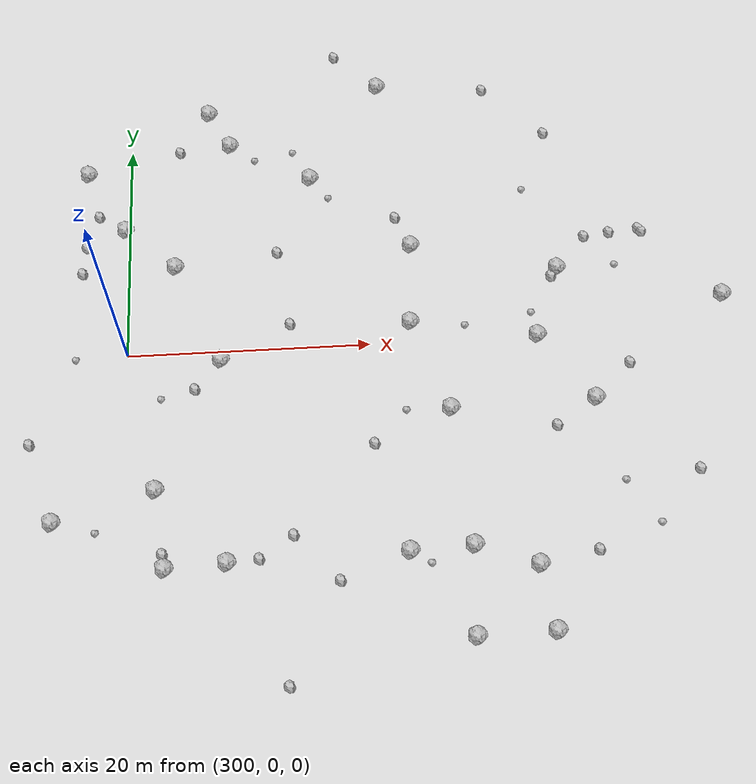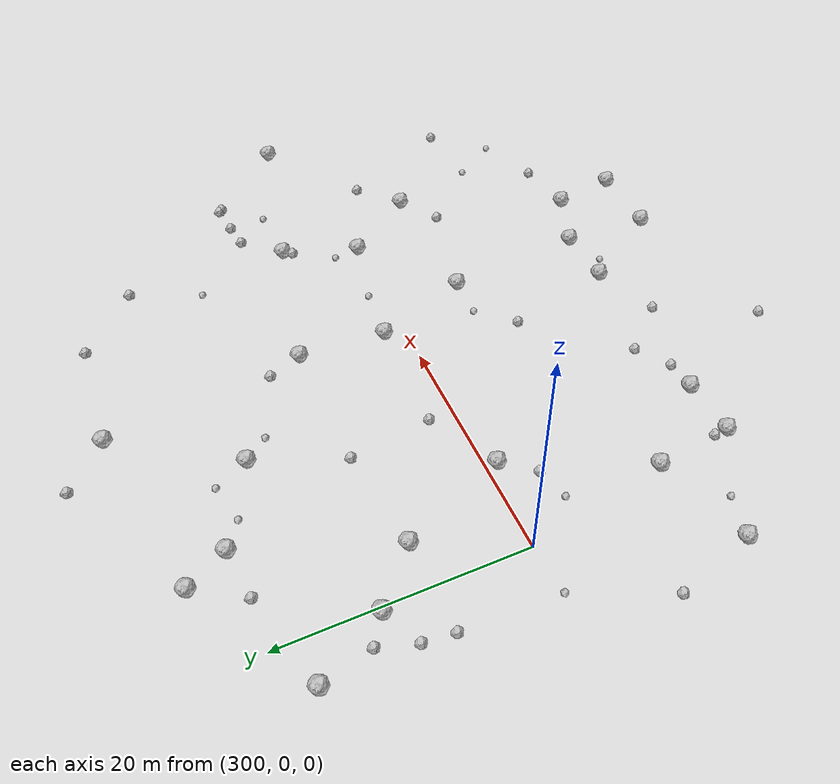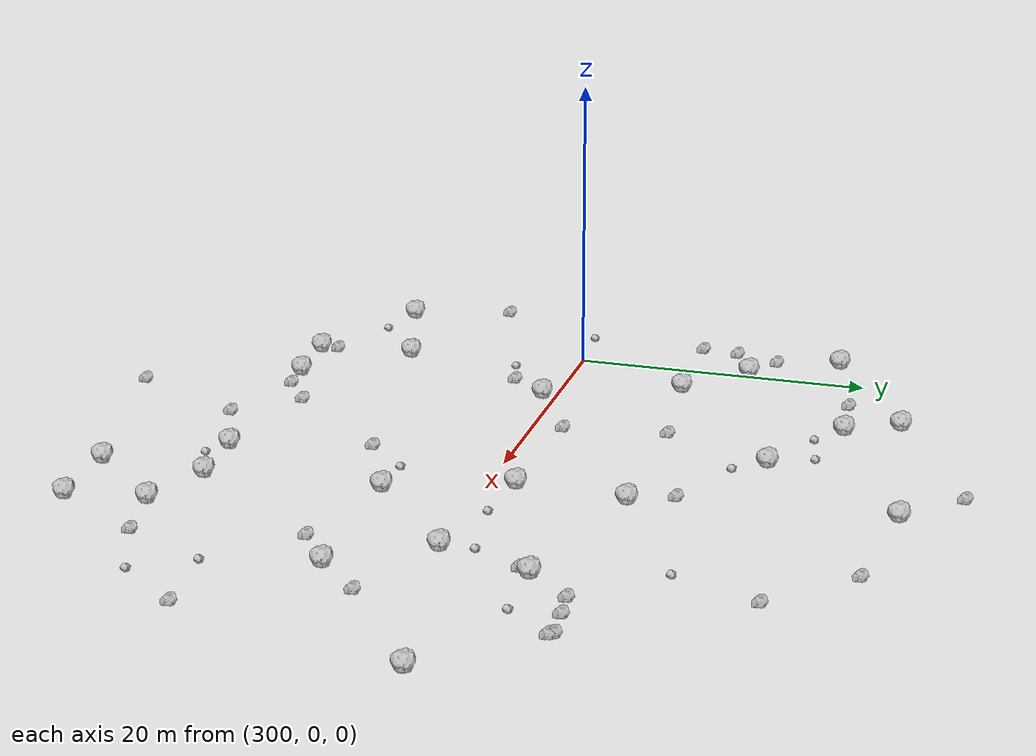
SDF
<sdf version="1.6">
 <world name="default">
  <include><uri>model://sun</uri></include>
  <model name="rock1_8_3">
   <include><uri>model://rock1</uri><pose>302.4763927321387 -12.073885493937752 0.5 0 0 0</pose></include>
  </model>
  <model name="rock1_8_4">
   <include><uri>model://rock1</uri><pose>299.6587163275593 11.896137600228109 0.5 0 0 0</pose></include>
  </model>
  <model name="rock1_8_5">
   <include><uri>model://rock1</uri><pose>338.03799605650624 -5.968662091648621 0.5 0 0 0</pose></include>
  </model>
  <model name="rock1_8_6">
   <include><uri>model://rock1</uri><pose>308.06789002121525 -18.3411541988673 0.5 0 0 0</pose></include>
  </model>
  <model name="rock1_8_7">
   <include><uri>model://rock1</uri><pose>326.2412057764029 -6.242300990017156 0.5 0 0 0</pose></include>
  </model>
  <model name="rock1_8_8">
   <include><uri>model://rock1</uri><pose>332.8848115506942 -25.000079908221785 0.5 0 0 0</pose></include>
  </model>
  <model name="rock1_8_9">
   <include><uri>model://rock1</uri><pose>349.69263778537197 2.992007504563155 0.5 0 0 0</pose></include>
  </model>
  <model name="rock1_8_10">
   <include><uri>model://rock1</uri><pose>333.8589915863098 -0.010002028666875162 0.5 0 0 0</pose></include>
  </model>
  <model name="rock1_8_11">
   <include><uri>model://rock1</uri><pose>315.5685456425868 16.36344007969003 0.5 0 0 0</pose></include>
  </model>
  <model name="rock1_8_12">
   <include><uri>model://rock1</uri><pose>307.7043685736055 -0.8957611207747149 0.5 0 0 0</pose></include>
  </model>
  <model name="rock1_8_13">
   <include><uri>model://rock1</uri><pose>336.11554223332416 6.261255528111185 0.5 0 0 0</pose></include>
  </model>
  <model name="rock1_8_14">
   <include><uri>model://rock1</uri><pose>322.2183691112595 -18.119752132660256 0.5 0 0 0</pose></include>
  </model>
  <model name="rock1_8_15">
   <include><uri>model://rock1</uri><pose>323.912382589453 9.109258509267697 0.5 0 0 0</pose></include>
  </model>
  <model name="rock1_8_16">
   <include><uri>model://rock1</uri><pose>296.3187266573603 17.741346120035082 0.5 0 0 0</pose></include>
  </model>
  <model name="rock1_8_17">
   <include><uri>model://rock1</uri><pose>327.2086388487595 -17.890125258134905 0.5 0 0 0</pose></include>
  </model>
  <model name="rock1_8_18">
   <include><uri>model://rock1</uri><pose>294.45582839978744 -14.383110065525068 0.5 0 0 0</pose></include>
  </model>
  <model name="rock1_8_19">
   <include><uri>model://rock1</uri><pose>321.8809544603378 25.836985420568787 0.5 0 0 0</pose></include>
  </model>
  <model name="rock1_8_20">
   <include><uri>model://rock1</uri><pose>332.1026966316447 -19.718828144031583 0.5 0 0 0</pose></include>
  </model>
  <model name="rock1_8_21">
   <include><uri>model://rock1</uri><pose>323.4318961129171 1.7625810051601754 0.5 0 0 0</pose></include>
  </model>
  <model name="rock1_8_22">
   <include><uri>model://rock1</uri><pose>326.82238631873776 -25.102405862098628 0.5 0 0 0</pose></include>
  </model>
  <model name="rock1_8_23">
   <include><uri>model://rock1</uri><pose>303.2532868156393 -18.579537124645867 0.5 0 0 0</pose></include>
  </model>
  <model name="rock1_8_24">
   <include><uri>model://rock1</uri><pose>303.91812543553345 8.042459844227658 0.5 0 0 0</pose></include>
  </model>
  <model name="rock1_8_25">
   <include><uri>model://rock1</uri><pose>308.6400723491373 20.14586557998333 0.5 0 0 0</pose></include>
  </model>
  <model name="rock1_8_26">
   <include><uri>model://rock1</uri><pose>306.79328732388734 23.645766035237074 0.5 0 0 0</pose></include>
  </model>
  <model name="rock2_8_0">
   <include><uri>model://rock2</uri><pose>340.918162690507 9.5460827317996 0.3 0 0 0</pose></include>
  </model>
  <model name="rock2_8_1">
   <include><uri>model://rock2</uri><pose>292.36074524210466 -7.65072847274158 0.3 0 0 0</pose></include>
  </model>
  <model name="rock2_8_2">
   <include><uri>model://rock2</uri><pose>334.65107278095115 -8.17772706036574 0.3 0 0 0</pose></include>
  </model>
  <model name="rock2_8_3">
   <include><uri>model://rock2</uri><pose>310.5381645395134 -18.140375085425667 0.3 0 0 0</pose></include>
  </model>
  <model name="rock2_8_4">
   <include><uri>model://rock2</uri><pose>313.23628996542004 -16.340813803793292 0.3 0 0 0</pose></include>
  </model>
  <model name="rock2_8_5">
   <include><uri>model://rock2</uri><pose>296.07310899960265 7.8642752221332515 0.3 0 0 0</pose></include>
  </model>
  <model name="rock2_8_6">
   <include><uri>model://rock2</uri><pose>312.62788040594444 -28.1369469846269 0.3 0 0 0</pose></include>
  </model>
  <model name="rock2_8_7">
   <include><uri>model://rock2</uri><pose>343.70593560368224 9.539757156714373 0.3 0 0 0</pose></include>
  </model>
  <model name="rock2_8_8">
   <include><uri>model://rock2</uri><pose>312.5075663069025 9.071172935770534 0.3 0 0 0</pose></include>
  </model>
  <model name="rock2_8_9">
   <include><uri>model://rock2</uri><pose>336.79070530733117 -18.79223742935318 0.3 0 0 0</pose></include>
  </model>
  <model name="rock2_8_10">
   <include><uri>model://rock2</uri><pose>296.34639678597995 10.4105898246695 0.3 0 0 0</pose></include>
  </model>
  <model name="rock2_8_11">
   <include><uri>model://rock2</uri><pose>303.0630974706496 -17.369621378585997 0.3 0 0 0</pose></include>
  </model>
  <model name="rock2_8_12">
   <include><uri>model://rock2</uri><pose>338.73711928116904 9.260447962816528 0.3 0 0 0</pose></include>
  </model>
  <model name="rock2_8_13">
   <include><uri>model://rock2</uri><pose>297.3394397030054 13.433298897967873 0.3 0 0 0</pose></include>
  </model>
  <model name="rock2_8_14">
   <include><uri>model://rock2</uri><pose>335.5341176403523 5.5203727537549625 0.3 0 0 0</pose></include>
  </model>
  <model name="rock2_8_15">
   <include><uri>model://rock2</uri><pose>318.1225831958713 29.42526405745498 0.3 0 0 0</pose></include>
  </model>
  <model name="rock2_8_16">
   <include><uri>model://rock2</uri><pose>341.1666707304607 -2.9086925205801286 0.3 0 0 0</pose></include>
  </model>
  <model name="rock2_8_17">
   <include><uri>model://rock2</uri><pose>313.43668443403226 2.140859357169184 0.3 0 0 0</pose></include>
  </model>
  <model name="rock2_8_18">
   <include><uri>model://rock2</uri><pose>336.3542263865524 20.081764581467354 0.3 0 0 0</pose></include>
  </model>
  <model name="rock2_8_19">
   <include><uri>model://rock2</uri><pose>305.55632770617734 -3.4394015857534654 0.3 0 0 0</pose></include>
  </model>
  <model name="rock2_8_20">
   <include><uri>model://rock2</uri><pose>343.46211898765335 9.815027092705058 0.3 0 0 0</pose></include>
  </model>
  <model name="rock2_8_21">
   <include><uri>model://rock2</uri><pose>322.70901690102414 11.999467454249704 0.3 0 0 0</pose></include>
  </model>
  <model name="rock2_8_22">
   <include><uri>model://rock2</uri><pose>319.91592170917795 -8.97516510183474 0.3 0 0 0</pose></include>
  </model>
  <model name="rock2_8_23">
   <include><uri>model://rock2</uri><pose>331.2845742648703 25.04429520763074 0.3 0 0 0</pose></include>
  </model>
  <model name="rock2_8_24">
   <include><uri>model://rock2</uri><pose>316.72137319139426 -20.191192180256614 0.3 0 0 0</pose></include>
  </model>
  <model name="rock2_8_25">
   <include><uri>model://rock2</uri><pose>304.23343266381164 19.717197832581498 0.3 0 0 0</pose></include>
  </model>
  <model name="rock2_8_26">
   <include><uri>model://rock2</uri><pose>345.570295642092 -12.510248660884532 0.3 0 0 0</pose></include>
  </model>
  <model name="rock3_8_0">
   <include><uri>model://rock3</uri><pose>310.7294155624122 18.541324461264757 0.2 0 0 0</pose></include>
  </model>
  <model name="rock3_8_1">
   <include><uri>model://rock3</uri><pose>314.0706426125291 19.2128200018143 0.2 0 0 0</pose></include>
  </model>
  <model name="rock3_8_2">
   <include><uri>model://rock3</uri><pose>341.91543345810226 -16.837806910737406 0.2 0 0 0</pose></include>
  </model>
  <model name="rock3_8_3">
   <include><uri>model://rock3</uri><pose>333.5204043555766 2.1603077244691917 0.2 0 0 0</pose></include>
  </model>
  <model name="rock3_8_4">
   <include><uri>model://rock3</uri><pose>317.0303965364158 14.327409617868483 0.2 0 0 0</pose></include>
  </model>
  <model name="rock3_8_5">
   <include><uri>model://rock3</uri><pose>341.0226976086922 6.3816886873065 0.2 0 0 0</pose></include>
  </model>
  <model name="rock3_8_6">
   <include><uri>model://rock3</uri><pose>323.7740290474227 -19.166797602970263 0.2 0 0 0</pose></include>
  </model>
  <model name="rock3_8_7">
   <include><uri>model://rock3</uri><pose>333.8690075095398 14.287145650590105 0.2 0 0 0</pose></include>
  </model>
  <model name="rock3_8_8">
   <include><uri>model://rock3</uri><pose>295.7697295845579 -0.25306842609892755 0.2 0 0 0</pose></include>
  </model>
  <model name="rock3_8_9">
   <include><uri>model://rock3</uri><pose>327.91008911471147 1.2723437396605703 0.2 0 0 0</pose></include>
  </model>
  <model name="rock3_8_10">
   <include><uri>model://rock3</uri><pose>322.6112977137628 -6.190606622788813 0.2 0 0 0</pose></include>
  </model>
  <model name="rock3_8_11">
   <include><uri>model://rock3</uri><pose>297.81022593793597 -15.3636005136578 0.2 0 0 0</pose></include>
  </model>
  <model name="rock3_8_12">
   <include><uri>model://rock3</uri><pose>302.8005724946881 -4.184924106862557 0.2 0 0 0</pose></include>
  </model>
  <model name="rock3_8_13">
   <include><uri>model://rock3</uri><pose>339.5717381363942 -13.155801390857718 0.2 0 0 0</pose></include>
  </model>
 </world>
</sdf>
